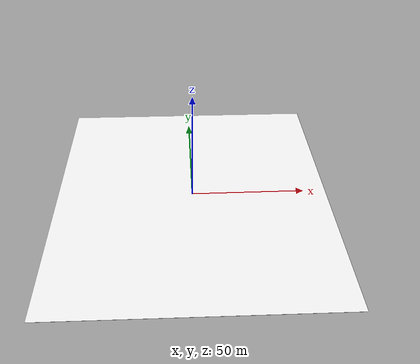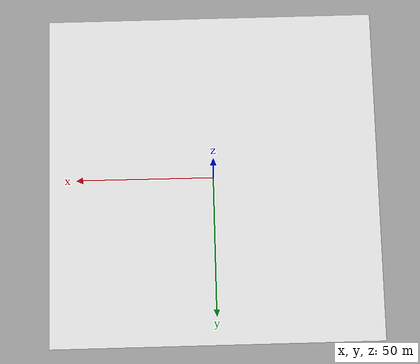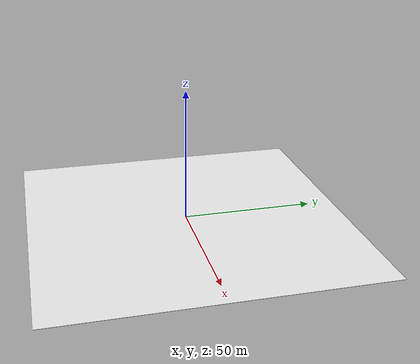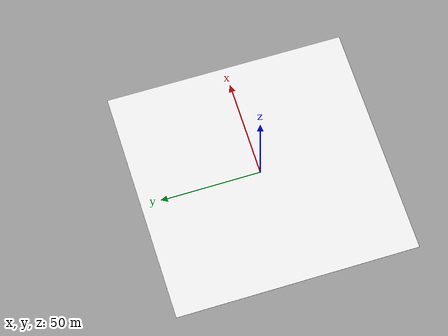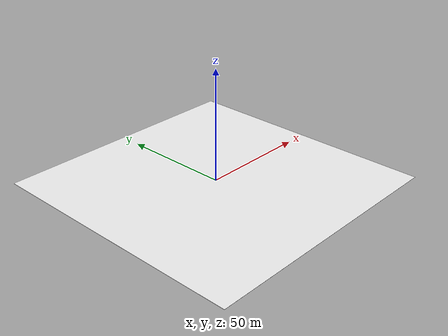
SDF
<?xml version="1.0" encoding="UTF-8"?>
<sdf version="1.9">
  <world name="vo_ground">
    <physics type="ode">
      <max_step_size>0.004</max_step_size>
      <real_time_factor>1.0</real_time_factor>
      <real_time_update_rate>250</real_time_update_rate>
    </physics>
    <gravity>0 0 -9.8</gravity>
    <magnetic_field>6e-06 2.3e-05 -4.2e-05</magnetic_field>
    <atmosphere type="adiabatic"/>
    <scene>
      <grid>false</grid>
      <ambient>0.6 0.6 0.6 1</ambient>
      <background>0.7 0.7 0.7 1</background>
      <shadows>true</shadows>
    </scene>
    <model name="ground_plane">
      <static>true</static>
      <link name="link">
        <collision name="collision">
          <geometry>
            <plane>
              <normal>0 0 1</normal>
              <size>500 500</size>
            </plane>
          </geometry>
          <surface>
            <friction>
              <ode/>
            </friction>
            <bounce/>
            <contact/>
          </surface>
        </collision>
        <pose>0 0 0 0 0 0</pose>
        <enable_wind>false</enable_wind>
      </link>
      <pose>0 0 0 0 0 0</pose>
      <self_collide>false</self_collide>
    </model>
    <include>
      <uri>model://textured_ground</uri>
    </include>
    <light name="sunUTC" type="directional">
      <pose>0 0 500 0 0 0</pose>
      <cast_shadows>true</cast_shadows>
      <intensity>1</intensity>
      <direction>0.001 0.625 -0.78</direction>
      <diffuse>0.904 0.904 0.904 1</diffuse>
      <specular>0.271 0.271 0.271 1</specular>
      <attenuation>
        <range>2000</range>
        <linear>0</linear>
        <constant>1</constant>
        <quadratic>0</quadratic>
      </attenuation>
      <spot>
        <inner_angle>0</inner_angle>
        <outer_angle>0</outer_angle>
        <falloff>0</falloff>
      </spot>
    </light>
    <spherical_coordinates>
      <surface_model>EARTH_WGS84</surface_model>
      <world_frame_orientation>ENU</world_frame_orientation>
      <latitude_deg>47.397971057728974</latitude_deg>
      <longitude_deg> 8.546163739800146</longitude_deg>
      <elevation>0</elevation>
    </spherical_coordinates>
  </world>
</sdf>

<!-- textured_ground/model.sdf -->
<sdf version="1.9">
  <model name="textured_ground">
    <static>true</static>
    <link name="link">
      <collision name="collision">
        <geometry><box><size>120 120 0.1</size></box></geometry>
        <surface><friction><ode><mu>1.0</mu><mu2>1.0</mu2></ode></friction></surface>
      </collision>
      <visual name="visual">
        <geometry><box><size>120 120 0.1</size></box></geometry>
        <material>
          <ambient>0.7 0.7 0.7 1</ambient>
          <diffuse>0.9 0.9 0.9 1</diffuse>
          <specular>0.1 0.1 0.1 1</specular>
          <pbr>
            <metal>
              <albedo_map>model://textured_ground/materials/textures/ground_albedo.png</albedo_map>
              <roughness>0.9</roughness>
              <metalness>0.0</metalness>
            </metal>
          </pbr>
        </material>
      </visual>
    </link>
    <pose>0 0 -0.05 0 0 0</pose>
  </model>
</sdf>
